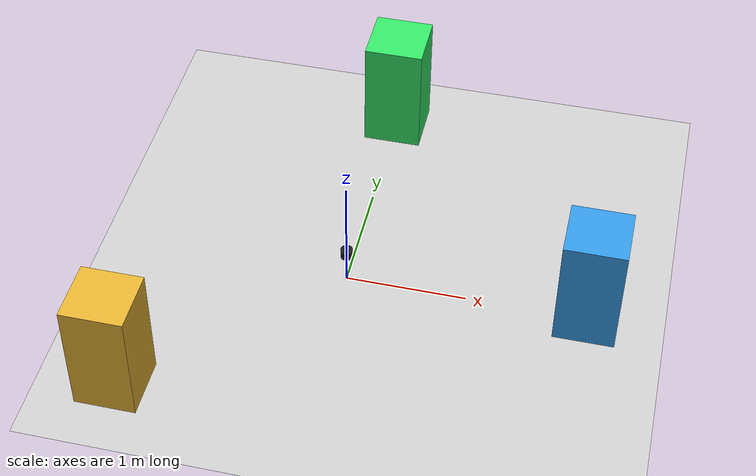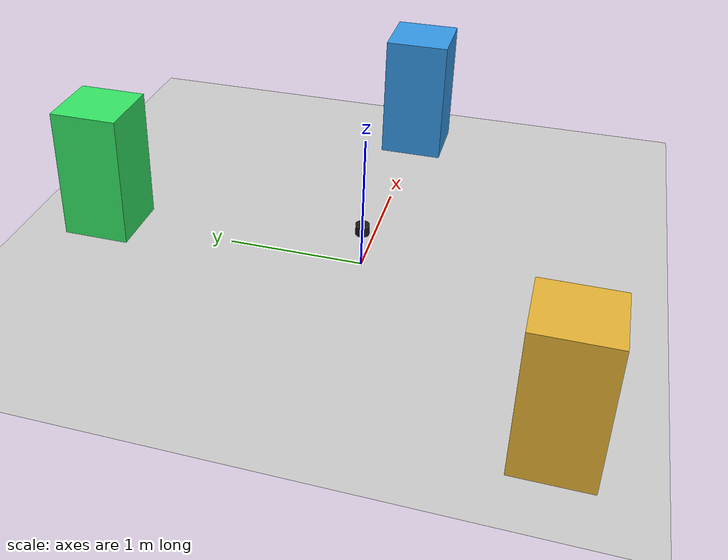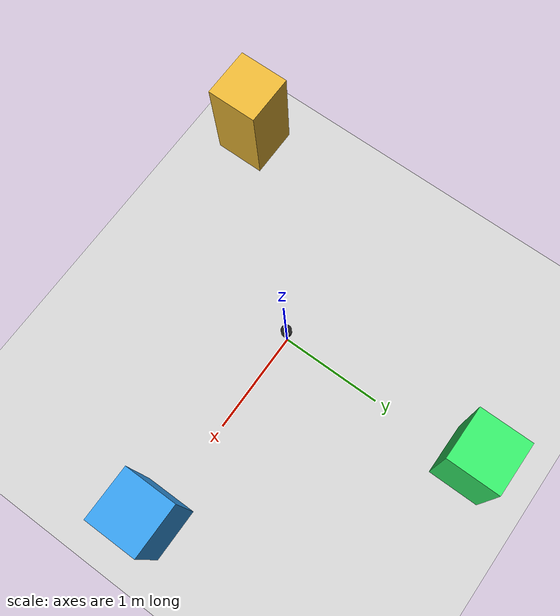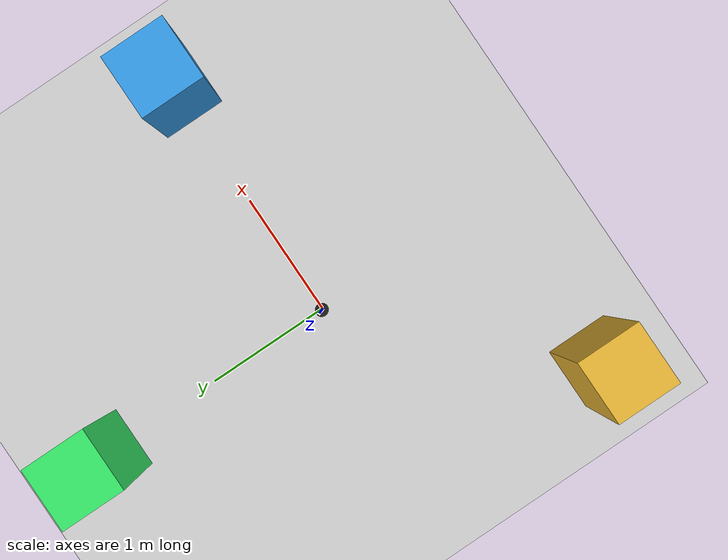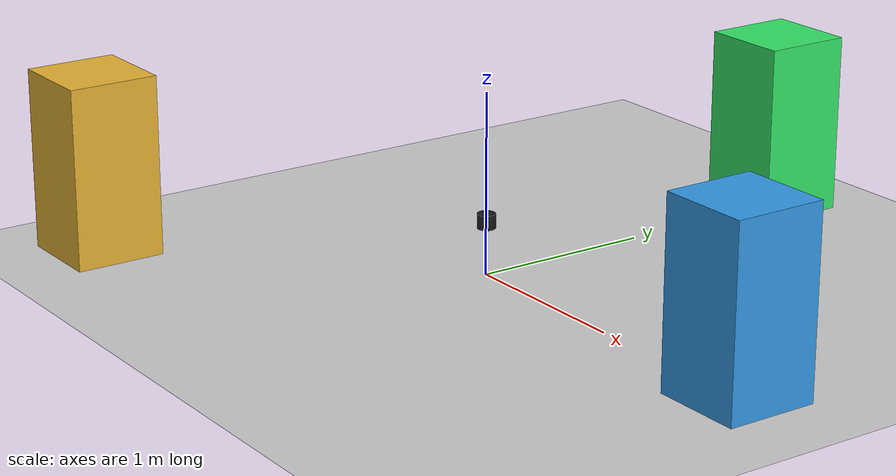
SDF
<?xml version="1.0" ?>
<sdf version="1.10">
  <world name="lidar_world">
    <physics name="1ms" type="ignored">
      <max_step_size>0.001</max_step_size>
      <real_time_factor>1.0</real_time_factor>
    </physics>

    <plugin filename="gz-sim-physics-system" name="gz::sim::systems::Physics"/>
    <plugin filename="gz-sim-user-commands-system" name="gz::sim::systems::UserCommands"/>
    <plugin filename="gz-sim-scene-broadcaster-system" name="gz::sim::systems::SceneBroadcaster"/>
    <plugin filename="gz-sim-sensors-system" name="gz::sim::systems::Sensors">
      <render_engine>ogre2</render_engine>
    </plugin>

    <light type="directional" name="sun">
      <cast_shadows>true</cast_shadows>
      <pose>0 0 10 0 0 0</pose>
      <diffuse>1 1 1 1</diffuse>
      <specular>0.2 0.2 0.2 1</specular>
      <direction>-0.5 0.1 -0.9</direction>
    </light>

    <model name="ground_plane">
      <static>true</static>
      <link name="link">
        <collision name="collision">
          <geometry><plane><normal>0 0 1</normal><size>100 100</size></plane></geometry>
        </collision>
        <visual name="visual">
          <geometry><plane><normal>0 0 1</normal><size>100 100</size></plane></geometry>
          <material>
            <ambient>0.8 0.8 0.8 1</ambient>
            <diffuse>0.8 0.8 0.8 1</diffuse>
          </material>
        </visual>
      </link>
    </model>

    <!-- The LiDAR, on a static post at z = 0.3. -->
    <model name="lidar">
      <static>true</static>
      <pose>0 0 0.3 0 0 0</pose>
      <link name="base_link">
        <visual name="visual">
          <geometry><cylinder><radius>0.05</radius><length>0.08</length></cylinder></geometry>
          <material>
            <ambient>0.1 0.1 0.1 1</ambient>
            <diffuse>0.1 0.1 0.1 1</diffuse>
          </material>
        </visual>
        <sensor name="lidar" type="gpu_lidar">
          <topic>scan</topic>
          <update_rate>10</update_rate>
          <always_on>1</always_on>
          <visualize>true</visualize>
          <lidar>
            <scan>
              <horizontal>
                <samples>360</samples>
                <resolution>1</resolution>
                <min_angle>-3.14159</min_angle>
                <max_angle>3.14159</max_angle>
              </horizontal>
              <vertical>
                <samples>1</samples>
                <resolution>1</resolution>
                <min_angle>0</min_angle>
                <max_angle>0</max_angle>
              </vertical>
            </scan>
            <range>
              <min>0.12</min>
              <max>10.0</max>
              <resolution>0.01</resolution>
            </range>
          </lidar>
        </sensor>
      </link>
    </model>

    <!-- Obstacles for the scan to return off. -->
    <model name="box_front">
      <static>true</static>
      <pose>2 0 0.5 0 0 0</pose>
      <link name="link">
        <collision name="collision"><geometry><box><size>0.5 0.5 1</size></box></geometry></collision>
        <visual name="visual">
          <geometry><box><size>0.5 0.5 1</size></box></geometry>
          <material><ambient>0.2 0.6 0.9 1</ambient><diffuse>0.2 0.6 0.9 1</diffuse></material>
        </visual>
      </link>
    </model>
    <model name="box_left">
      <static>true</static>
      <pose>0 2 0.5 0 0 0</pose>
      <link name="link">
        <collision name="collision"><geometry><box><size>0.5 0.5 1</size></box></geometry></collision>
        <visual name="visual">
          <geometry><box><size>0.5 0.5 1</size></box></geometry>
          <material><ambient>0.2 0.9 0.4 1</ambient><diffuse>0.2 0.9 0.4 1</diffuse></material>
        </visual>
      </link>
    </model>
    <model name="box_back_right">
      <static>true</static>
      <pose>-1.5 -1.5 0.5 0 0 0</pose>
      <link name="link">
        <collision name="collision"><geometry><box><size>0.5 0.5 1</size></box></geometry></collision>
        <visual name="visual">
          <geometry><box><size>0.5 0.5 1</size></box></geometry>
          <material><ambient>0.9 0.7 0.2 1</ambient><diffuse>0.9 0.7 0.2 1</diffuse></material>
        </visual>
      </link>
    </model>
  </world>
</sdf>
